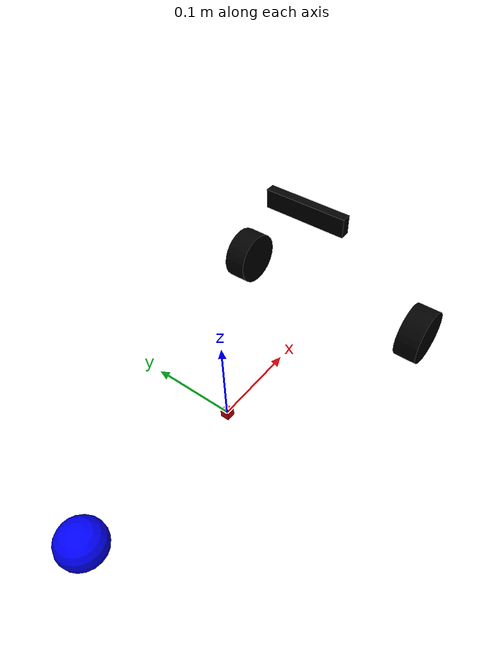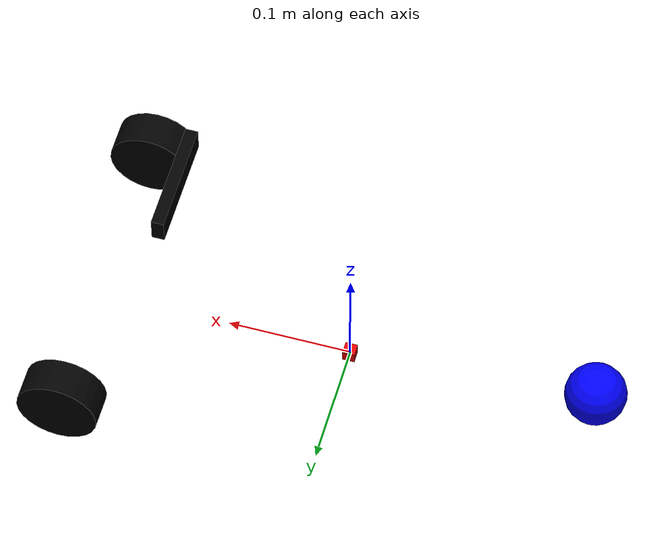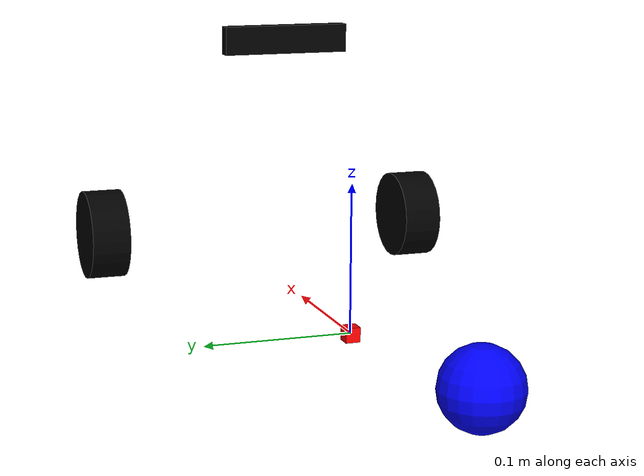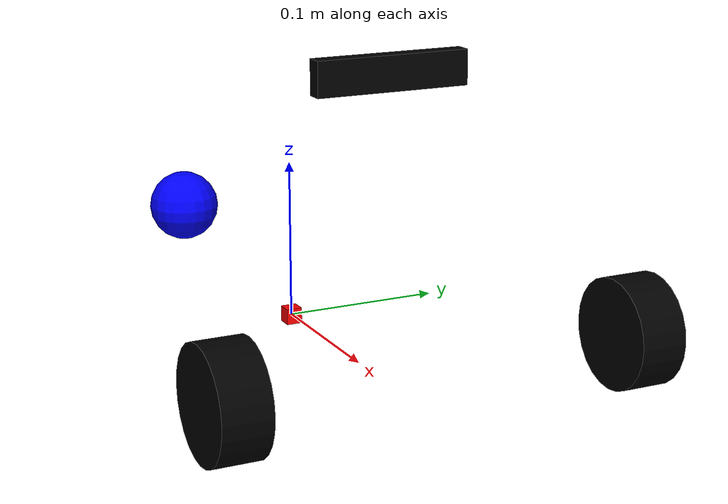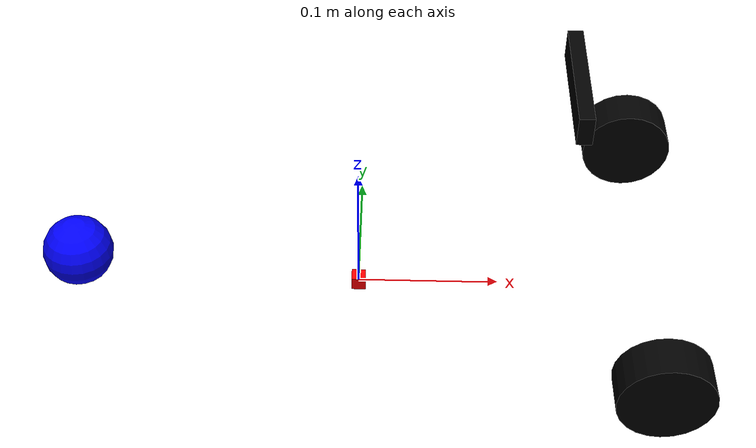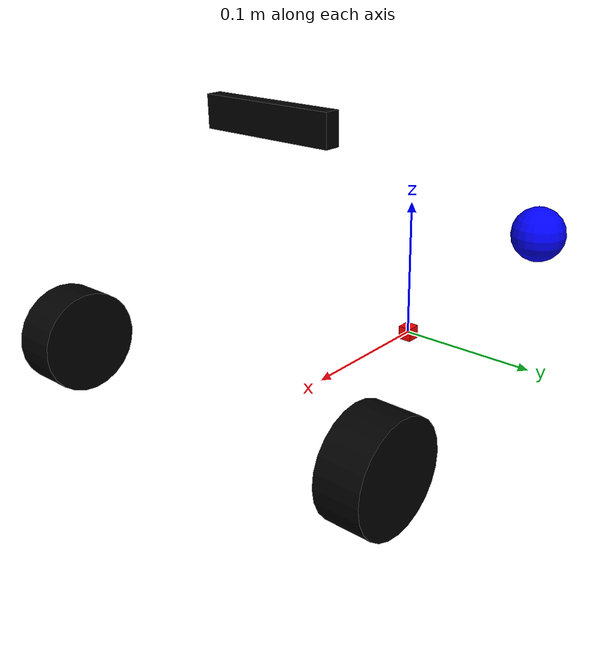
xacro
<?xml version="1.0"?>

<robot xmlns:xacro="http://www.ros.org/wiki/xacro" name="kd1">
    <!-- LAUNCH: ros2 launch urdf_tutorial display.launch.py model:=/home/marvin/kd1_ws/src/kd1_description/urdf/kd1.urdf.xacro -->

    <!--
        x (red) = forward
        y (green) = left
        z (blue) = up
    -->

    <!-- PROPERTIES = VARIABLES -->
    <xacro:property name="PI" value="3.14159"/>

    <xacro:property name="wheel_diameter" value="0.065"/>
    <xacro:property name="wheel_radius" value="${wheel_diameter / 2}"/>
    <xacro:property name="wheel_width" value="0.028"/>

    <xacro:property name="caster_wheel_diameter" value="0.05"/>
    <xacro:property name="caster_wheel_radius" value="${caster_wheel_diameter / 2}"/>

    <xacro:property name="wheel_base" value="0.245"/>
    <xacro:property name="robot_length" value="0.40"/>

    <!-- MACROS = FUNCTIONS -->

    <!--
        LINKS
    -->

    <link name="base_link">
        <visual>
            <origin xyz="0 0 0.0" rpy="0 0 0"/>
            <geometry>
                <!-- length, width, height in meters -->
                <box size="0.01 0.01 0.01" />
            </geometry>
            <material name="red">
                <color rgba="1 0 0 1"/>
            </material>
        </visual>
    </link>

    <!-- LEFT WHEEL -->
    <link name="left_wheel_link">
        <visual>
            <origin xyz="0.0 0.0 0.0" rpy="${PI/2} 0 0"/>
            <geometry>
                <cylinder length="${wheel_width}" radius="${wheel_radius}"/>
            </geometry>
            <material name="black">
                <color rgba="0 0 0 1"/>
            </material>
        </visual>
    </link>

    <!-- RIGHT WHEEL -->
    <link name="right_wheel_link">
        <visual>
          <origin xyz="0.0 0.0 0.0" rpy="${PI/2} 0 0"/>
          <geometry>
            <cylinder length="${wheel_width}" radius="${wheel_radius}"/>
          </geometry>
          <material name="black">
            <color rgba="0 0 0 1"/>
          </material>
        </visual>
    </link>

    <!-- CASTER WHEEL -->
    <link name="caster_link">
        <visual>
        <origin xyz="0.0 0.0 0.0" rpy="0 0 0"/>
            <geometry>
                <sphere radius="${caster_wheel_radius}"/>
            </geometry>
            <material name="blue">
                <color rgba="0 0 1 1"/>
            </material>
        </visual>
    </link>

    <!-- IMU -->
    <link name="imu_link">
        <visual>
            <origin xyz="0 0 0" rpy="0 0 0"/>
            <geometry>
                <box size="0.01 0.09 0.02"/>
            </geometry>
            <material name="black">
                <color rgba="0 0 0 1"/>
            </material>
        </visual>
    </link>

    <!-- DEPTH CAMERA -->
    <link name="depth_camera_link"/>

    <!-- TOF SENSORS -->
    <link name="tof_front_left_link"/>
    <link name="tof_front_right_link"/>
    <link name="tof_back_left_link"/>
    <link name="tof_back_right_link"/>

    <!--
        JOINTS
    -->

    <!-- LEFT WHEEL -->
    <joint name="left_wheel_joint" type="continuous">
        <parent link="base_link"/>
        <child link="left_wheel_link"/>
        <origin xyz="${robot_length / 2} ${wheel_base / 2} ${wheel_diameter / 2}" rpy="0 0 0"/>
        <axis xyz="0 1 0"/>
    </joint>

    <!-- RIGHT WHEEL -->
    <joint name="right_wheel_joint" type="continuous">
        <parent link="base_link"/>
        <child link="right_wheel_link"/>
        <origin xyz="${robot_length / 2} -${wheel_base / 2} ${wheel_diameter / 2}" rpy="0 0 0"/>
        <axis xyz="0 1 0"/>
    </joint>

    <!-- CASTER WHEEL -->
    <joint name="caster_wheel_joint" type="fixed">
        <parent link="base_link"/>
        <child link="caster_link"/>
        <origin xyz="-${robot_length / 2} 0.0 ${caster_wheel_diameter / 2}" rpy="0 0 0"/>
    </joint>

    <!-- IMU Z was 0.14 -->
    <joint name="imu_joint" type="fixed">
        <parent link="base_link"/>
        <child link="imu_link"/>
        <origin xyz="${(robot_length / 2) - 0.06} 0.0 0.18" rpy="0 0 0"/>
    </joint>

    <!-- DEPTH CAMERA -->
    <joint name="imu_to_depth_camera" type="fixed">
        <parent link="imu_link"/>
        <child link="depth_camera_link"/>
        <!-- Rotate 90 degrees counter clockwise around X-axis, camera looks to the front not up -->
        <origin xyz="0 0 0" rpy="-${PI/2} 0 -${PI/2}"/>
    </joint>

    <!-- TOF SENSOR FRONT LEFT -->
    <joint name="base_link_to_tof_front_left" type="fixed">
        <parent link="base_link"/>
        <child link="tof_front_left_link"/>
        <origin xyz="${robot_length / 2} ${wheel_base / 2} 0.06" rpy="0 0 -${PI/4}"/>
    </joint>

    <!-- TOF SENSOR FRONT RIGHT -->
    <joint name="base_link_to_tof_front_right" type="fixed">
        <parent link="base_link"/>
        <child link="tof_front_right_link"/>
        <origin xyz="${robot_length / 2} -${wheel_base / 2} 0.06" rpy="0 0 ${PI/4}"/>
    </joint>

    <!-- TOF SENSOR BACK LEFT -->
    <joint name="base_link_to_tof_back_left" type="fixed">
        <parent link="base_link"/>
        <child link="tof_back_left_link"/>
        <origin xyz="-${robot_length / 2} ${wheel_base / 4} 0.06" rpy="0 0 ${PI/2}"/>
    </joint>

    <!-- TOF SENSOR BACK RIGHT -->
    <joint name="base_link_to_tof_back_right" type="fixed">
        <parent link="base_link"/>
        <child link="tof_back_right_link"/>
        <origin xyz="-${robot_length / 2} -${wheel_base / 4} 0.06" rpy="0 0 -${PI/2}"/>
    </joint>
</robot>
